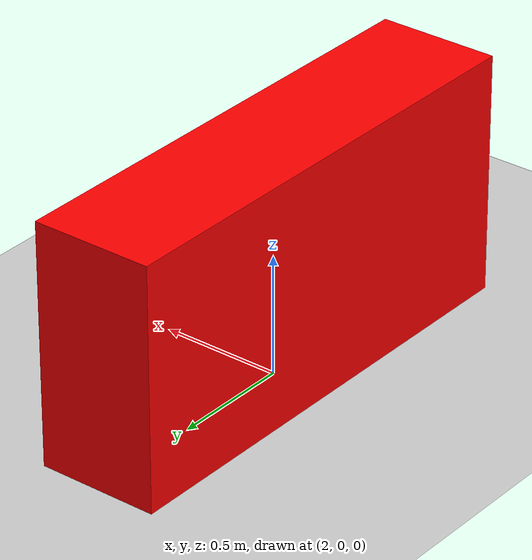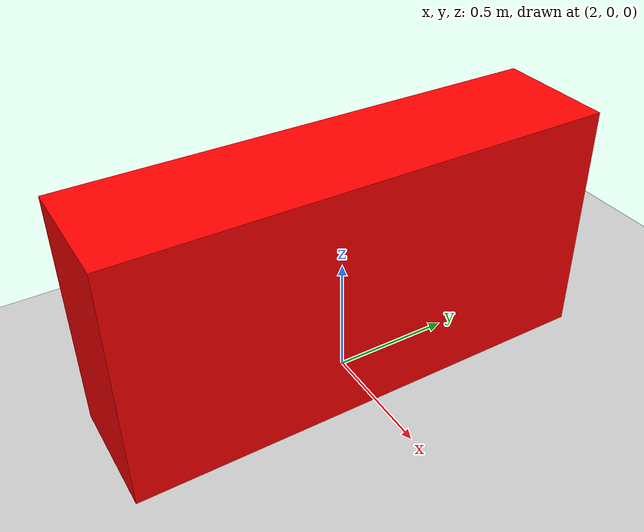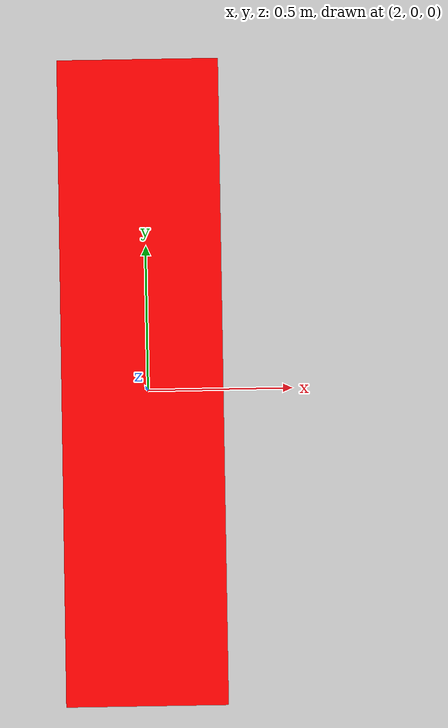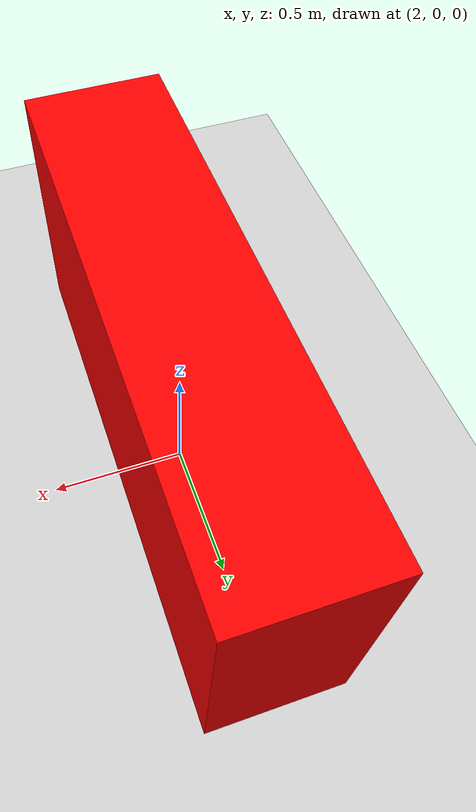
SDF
<?xml version="1.0" ?>
<sdf version="1.6">
  <world name="my_world">

    <physics name="1ms" type="physics">
      <max_step_size>0.001</max_step_size>
      <real_time_factor>1.0</real_time_factor>
    </physics>

    <plugin
      filename="gz-sim-sensors-system"
      name="gz::sim::systems::Sensors">
      <render_engine>ogre</render_engine>
    </plugin>

    <plugin
      filename="gz-sim-physics-system"
      name="gz::sim::systems::Physics">
    </plugin>
    <plugin
      filename="gz-sim-user-commands-system"
      name="gz::sim::systems::UserCommands">
    </plugin>
    <plugin
      filename="gz-sim-scene-broadcaster-system"
      name="gz::sim::systems::SceneBroadcaster">
    </plugin>
    <plugin filename="gz-sim-imu-system"
        name="gz::sim::systems::Imu">
    </plugin>

    <light type="directional" name="sun">
      <cast_shadows>true</cast_shadows>
      <pose>0 0 10 0 0 0</pose>
      <diffuse>0.8 0.8 0.8 1</diffuse>
      <specular>0.2 0.2 0.2 1</specular>
      <direction>-0.5 0.1 -0.9</direction>
    </light>

    <model name="ground_plane">
      <static>true</static>
      <link name="link">
        <collision name="collision">
          <geometry><plane><normal>0 0 1</normal><size>100 100</size></plane></geometry>
        </collision>
        <visual name="visual">
          <geometry><plane><normal>0 0 1</normal><size>100 100</size></plane></geometry>
          <material>
            <ambient>0.8 0.8 0.8 1</ambient>
            <diffuse>0.8 0.8 0.8 1</diffuse>
            <specular>0.8 0.8 0.8 1</specular>
          </material>
        </visual>
      </link>
    </model>

    <model name="test_wall">
      <pose>2 0 0.5 0 0 0</pose> <static>true</static>
      <link name="link">
        <collision name="collision"><geometry><box><size>0.5 2.0 1.0</size></box></geometry></collision>
        <visual name="visual"><geometry><box><size>0.5 2.0 1.0</size></box></geometry><material><ambient>1 0 0 1</ambient></material></visual>
      </link>
    </model>

  </world>
</sdf>
